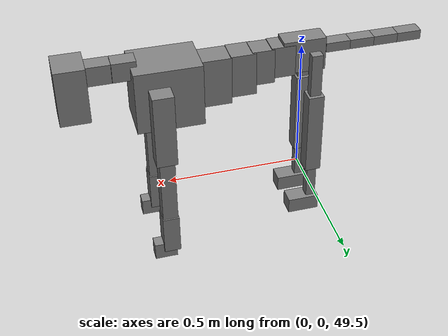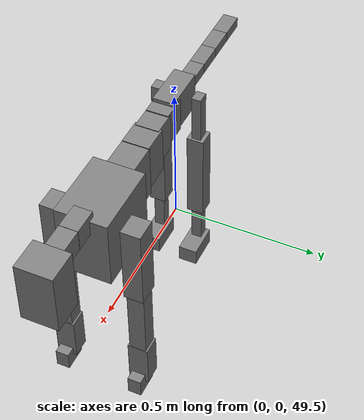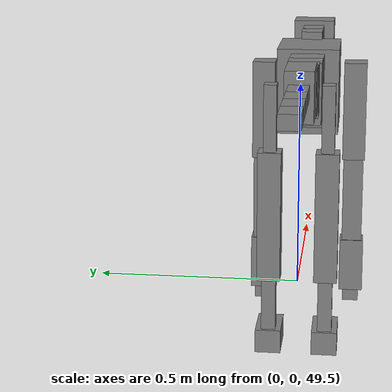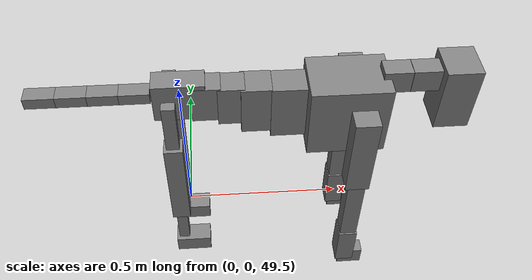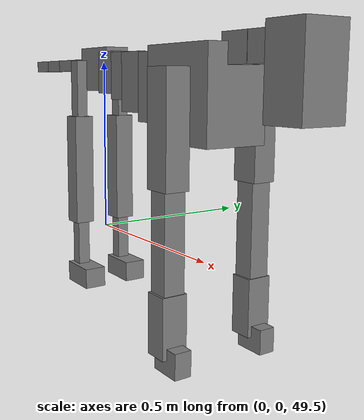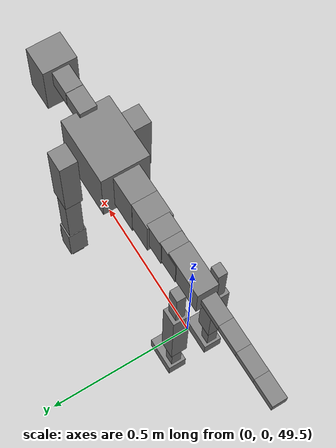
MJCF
<mujoco model="dog">

    <default>
        <joint armature="0.02" stiffness="1" damping="0.2" limited="true"/>
        <geom condim="3" friction="1 0.05 0.05" margin="0.01"/>
        <motor ctrllimited="true" ctrlrange="-1.0 1.0" forcelimited="true" gear="50"/>
    </default>

    <compiler inertiafromgeom="true" angle="radian"/>

    <option timestep="0.016" iterations="50" tolerance="1e-10" solver="Newton" jacobian="dense" cone="pyramidal"/>

    <size nconmax="20000" njmax="60000" nstack="5000000"/>
    <visual>
        <map force="0.1" zfar="30"/>
        <rgba haze="0.15 0.25 0.35 1"/>
        <quality shadowsize="2048"/>
        <global offwidth="800" offheight="800"/>
    </visual>

    <asset>
        <texture type="skybox" builtin="gradient" rgb1="0.3 0.5 0.7" rgb2="0 0 0" width="512" height="512"/>
        <texture name="texplane" type="2d" builtin="checker" rgb1=".2 .3 .4" rgb2=".1 0.15 0.2" width="512" height="512"
                 mark="cross" markrgb=".8 .8 .8"/>
        <texture name="texgeom" type="cube" builtin="flat" mark="cross" width="127" height="1278" rgb1="0.8 0.6 0.4"
                 rgb2="0.8 0.6 0.4" markrgb="1 1 1" random="0.01"/>

        <material name="matplane" reflectance="0.3" texture="texplane" texrepeat="1 1" texuniform="true"/>
        <material name="matgeom" texture="texgeom" texuniform="true" rgba="0.8 0.6 .4 1"/>
    </asset>

    <worldbody>
        <geom name="floor" pos="0 0 0" size="0 0 .25" type="plane" material="matplane" condim="3"/>

        <light directional="false" diffuse=".2 .2 .2" specular="0 0 0" pos="0 0 5" dir="0 0 -1" castshadow="false"/>
        <light mode="targetbodycom" target="torso" directional="false" diffuse=".8 .8 .8" specular="0.3 0.3 0.3"
               pos="0 0 4.0" dir="0 0 -1"/>

        <body name="root" pos="0 0 50">
            <freejoint name="root_1"/>
            <geom type="box" pos="0 0 -0.02" size="0.0774  0.0358  0.063" density="2030"/>

            <body name="spine1" pos="0.054 0 0">
                <joint name="spine1_y" axis="0 1 0" range="0 0.7" limited="true"/>
                <geom type="box" pos="0.02375 0 -0.03" size="0.04375  0.0375  0.05985" density="2030"/>

                <body name="spine2" pos="0.0612 0 0">
                    <joint name="spine2_y" axis="0 1 0" range="-0.15 0.15" limited="true"/>
                    <geom type="box" pos="0.03555  0  -0.04" size="0.04055  0.039  0.06615" density="2030"/>

                    <body name="spine3" pos="0.0730 0 0">
                        <joint name="spine3_y" axis="0 1 0" range="-0.15 0.15" limited="true"/>
                        <geom type="box" pos="0.03555  0  -0.057" size="0.04555  0.0445  0.081" density="2030"/>

                        <body name="spine4" pos="0.0780 0 0">
                            <joint name="spine4_y" axis="0 1 0" range="-0.15 0.15" limited="true"/>
                            <geom type="box" pos="0.05265  0  -0.07" size="0.05265  0.045  0.09135" density="2030"/>

                            <body name="torso" pos="0.1082 0 0">
                                <joint name="torso_y" axis="0 1 0" range="-0.15 0.15" limited="true"/>
                                <geom type="box" pos="0.11925  0  -0.085" size="0.11925  0.085  0.11745"
                                      density="2030"/>

                                <body name="neck1" pos="0.2160  0   0.0180">
                                    <joint name="neck1_y" axis="0 1 0" range="-1.2  -1" limited="true"/>
                                    <geom type="box" pos="0.0423  0  0" size="0.0423  0.03  0.036" density="2325"/>

                                    <body name="neck2" pos="0.0853  0  0">
                                        <joint name="neck2_y" axis="0 1 0" range="0.1  0" limited="true"/>
                                        <geom type="box" pos="0.0423  0  0" size="0.0423  0.03  0.036" density="2325"/>

                                        <body name="head" pos="0.0853  0  0">
                                            <joint name="head_y" axis="0 1 0" range="-0.3  -0.2" limited="true"/>
                                            <geom type="box" pos="0.0531  0  -0.055" size="0.0531  0.06  0.1044"
                                                  density="4030"/>

                                        </body>
                                    </body>
                                </body>

                                <body name="front_shoulder" pos="0.156  0   -0.0480">
                                    <joint name="front_shoulder_y" axis="0 1 0" range="-1 1.5" limited="true"/>
                                    <geom type="box" pos="0 0.13 -0.1131" size="0.0375  0.0320  0.1398" density="1158"/>
                                    <geom type="box" pos="0 -0.13 -0.1131" size="0.0375  0.0320  0.1398"
                                          density="1158"/>

                                    <body name="front_elbow" pos="0  0  -0.2262">
                                        <joint name="front_elbow_y" axis="0 1 0" range="-2 0" limited="true"/>
                                        <geom type="box" pos="0 0.13 -0.1417" size="0.0276  0.0282  0.1417"
                                              density="1081"/>
                                        <geom type="box" pos="0 -0.13 -0.1417" size="0.0276  0.0282  0.1417"
                                              density="1081"/>

                                        <body name="front_wrist" pos="0  0  -0.2833">
                                            <joint name="front_wrist_y" axis="0 1 0" range="-0.2 0" limited="true"/>
                                            <geom type="box" pos="0 0.13 -0.0630" size="0.0304  0.0338  0.0762"
                                                  density="1664"/>
                                            <geom type="box" pos="0 -0.13 -0.0630" size="0.0304  0.0338  0.0762"
                                                  density="1664"/>

                                            <body name="front_finger_end" pos="0  0  -0.1260">
                                                <joint name="front_finger_y" axis="0 1 0" range="-0.4 1"
                                                       limited="true"/>
                                                <geom type="box" pos="0.0227  0.13  -0.0173"
                                                      size="0.0416  0.0227  0.0323" density="1515"/>
                                                <geom type="box" pos="0.0227  -0.13  -0.0173"
                                                      size="0.0416  0.0227  0.0323" density="1515"/>

                                            </body>

                                        </body>
                                    </body>
                                </body>

                            </body>
                        </body>
                    </body>
                </body>
            </body>

            <body name="back_hip" pos="-0.03 0 -0.018">
                <joint name="back_hip_y" axis="0 1 0" range="-1.5 0.3" limited="true"/>
                <geom type="box" pos="0 0.07 -0.0785" size="0.0200  0.0157  0.1013" density="1154"/>
                <geom type="box" pos="0 -0.07 -0.0785" size="0.0200  0.0157  0.1013" density="1154"/>

                <body name="back_knee" pos="0  0  -0.1571">
                    <joint name="back_knee_y" axis="0 1 0" range="0 2.8" limited="true"/>
                    <geom type="box" pos="0 0.07 -0.1461" size="0.0289  0.0285  0.1616" density="1227"/>
                    <geom type="box" pos="0 -0.07 -0.1461" size="0.0289  0.0285  0.1616" density="1227"/>

                    <body name="back_ankle" pos="0  0  -0.2922">
                        <joint name="back_ankle_y" axis="0 1 0" range="-2.2 0" limited="true"/>
                        <geom type="box" pos="0 0.07 -0.0807" size="0.0177  0.0177  0.0920" density="1284"/>
                        <geom type="box" pos="0 -0.07 -0.0807" size="0.0177  0.0177  0.0920" density="1284"/>

                        <body name="back_toe_end" pos="0  0  -0.1615">
                            <joint name="back_toe_y" axis="0 1 0" range="-0.4 1" limited="true"/>
                            <geom type="box" pos="0.0317  0.07  -0.0143" size="0.0581  0.0317  0.0293" density="1515"/>
                            <geom type="box" pos="0.0317  -0.07  -0.0143" size="0.0581  0.0317  0.0293" density="1515"/>

                        </body>
                    </body>
                </body>
            </body>

            <body name="tail1" pos="-0.074 0 -0.006">
                <joint name="tail1_y" axis="0 1 0" range="-0.2 0.2" limited="true"/>
                <geom type="box" pos="-0.0536  0  0" size="0.045  0.025  0.0175" density="1587"/>

                <body name="tail2" pos="-0.09 0 0">
                    <joint name="tail2_y" axis="0 1 0" range="-0.2 0.2" limited="true"/>
                    <geom type="box" pos="-0.0536  0  0" size="0.045  0.025  0.0175" density="1587"/>

                    <body name="tail3" pos="-0.09 0 0">
                        <joint name="tail3_y" axis="0 1 0" range="-0.2 0.2" limited="true"/>
                        <geom type="box" pos="-0.0536  0  0" size="0.045  0.025  0.0175" density="1587"/>

                        <body name="tail4" pos="-0.09 0 0">
                            <joint name="tail4_y" axis="0 1 0" range="-0.2 0.2" limited="true"/>
                            <geom type="box" pos="-0.0536  0  0" size="0.045  0.025  0.0175" density="1587"/>

                        </body>
                    </body>
                </body>
            </body>
        </body>
    </worldbody>

    <actuator>
        <motor joint="spine1_y" forcerange="-150 150     "/>
        <motor joint="spine2_y" forcerange="-150 150     "/>
        <motor joint="spine3_y" forcerange="-150 150     "/>
        <motor joint="spine4_y" forcerange="-150 150     "/>
        <motor joint="torso_y" forcerange="-150 150     "/>
        <motor joint="neck1_y" forcerange="-100 100       "/>
        <motor joint="neck2_y" forcerange="-100 100       "/>
        <motor joint="head_y" forcerange="-150 150       "/>
        <motor joint="front_shoulder_y" forcerange="-175.12 138.45"/>
        <motor joint="front_elbow_y" forcerange="-142.70 162.20"/>
        <motor joint="front_wrist_y" forcerange="-130.96 139.33"/>
        <motor joint="front_finger_y" forcerange="-60.64 20.40"/>
        <motor joint="back_hip_y" forcerange="-202.52 206.42"/>
        <motor joint="back_knee_y" forcerange="-381.06 233.36"/>
        <motor joint="back_angle_y" forcerange="-91.08 91.58"/>
        <motor joint="back_toe_y" forcerange="-34.66 138.99"/>
        <motor joint="tail1_y" forcerange="-50 50     "/>
        <motor joint="tail2_y" forcerange="-50 50     "/>
        <motor joint="tail3_y" forcerange="-50 50     "/>
        <motor joint="tail4_y" forcerange="-50 50     "/>
    </actuator>
</mujoco>
